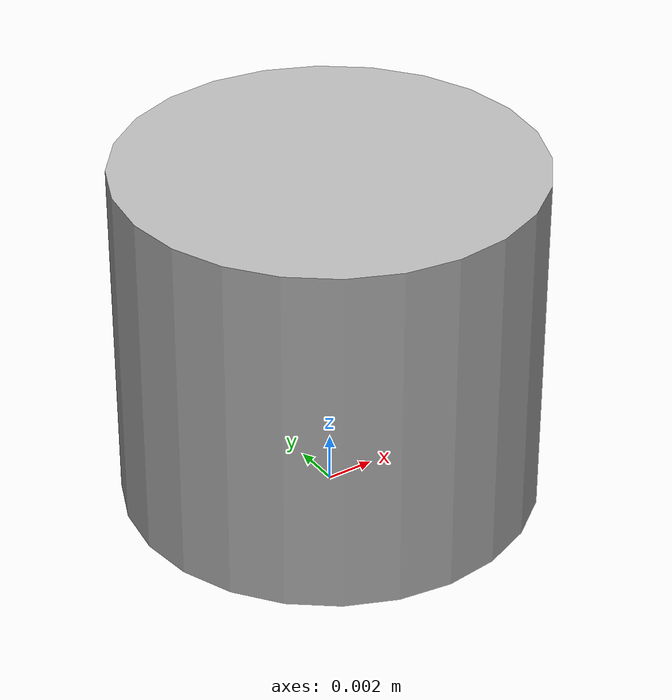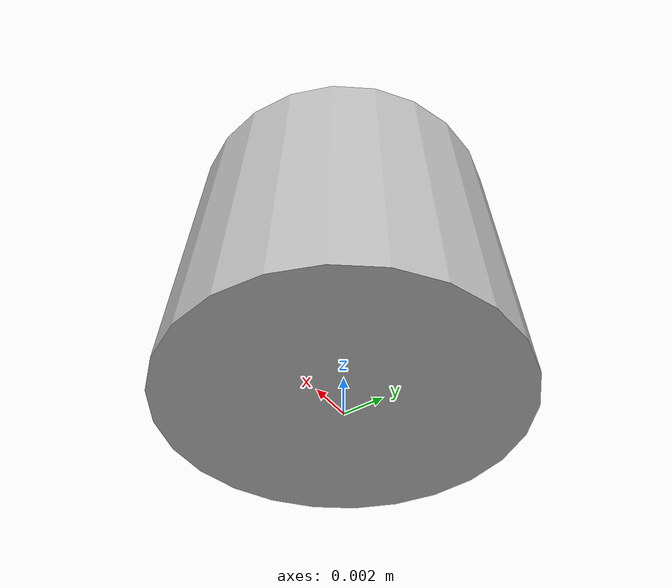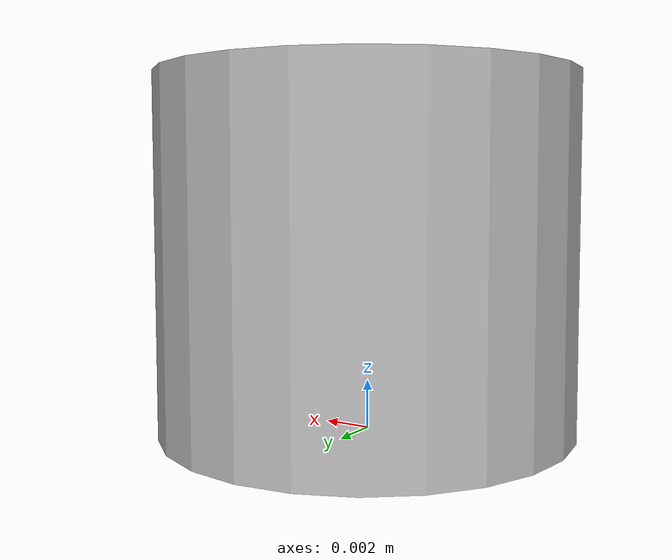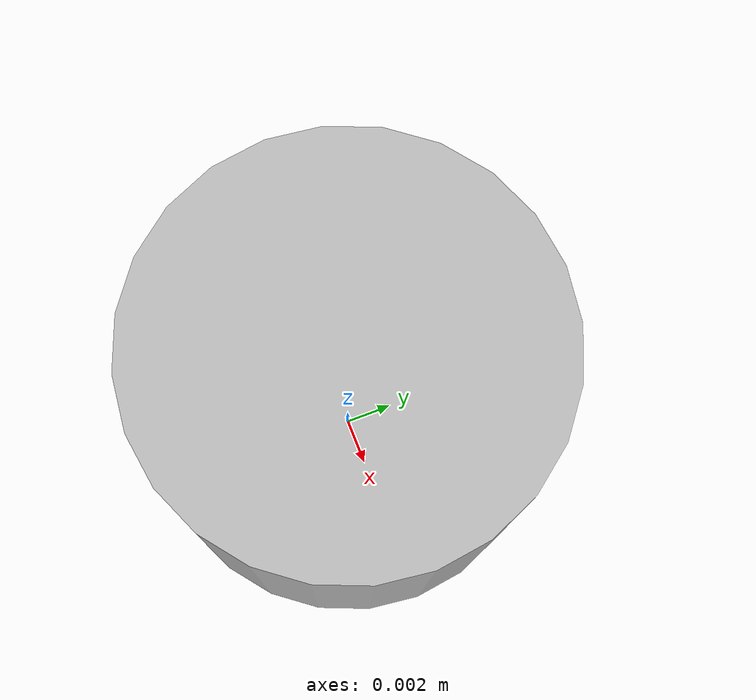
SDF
<?xml version="1.0"?>
<sdf version="1.6">
  <model name="ati_nano17">
    <pose>0 0 0 0 0 0</pose>
    <static>false</static>
    <link name="mount">
      <gravity>false</gravity>
      <inertial>
        <mass>1000.0</mass>
        <inertia>
          <ixx>1.0</ixx><iyy>1.0</iyy><izz>1.0</izz>
          <ixy>0.0</ixy><ixz>0.0</ixz><iyz>0.0</iyz>
        </inertia>
      </inertial>
    </link>
    <link name="body">
      <!-- Lift body so cylinder (length 0.0145) sits flush on ground. -->
      <pose>0 0 0.00725 0 0 0</pose>
      <inertial>
        <mass>0.00907</mass>
        <inertia>
          <ixx>1e-6</ixx><iyy>1e-6</iyy><izz>1e-6</izz>
          <ixy>0.0</ixy><ixz>0.0</ixz><iyz>0.0</iyz>
        </inertia>
      </inertial>
      <collision name="tactile_collision">
        <geometry>
          <cylinder>
            <radius>0.0085</radius>
            <length>0.0145</length>
          </cylinder>
        </geometry>
      </collision>
      <!-- Bounding size for test framework -->
      <sensor_size>0.017 0.017 0.0145</sensor_size>
      <shape>cylinder</shape>
      <visual name="visual">
        <geometry>
          <cylinder>
            <radius>0.0085</radius>
            <length>0.0145</length>
          </cylinder>
        </geometry>
      </visual>
      <sensor name="tactile_bumper" type="contact">
        <always_on>true</always_on>
        <update_rate>50.0</update_rate>
        <contact>
          <collision>tactile_collision</collision>
        </contact>
        <plugin name="tactile_bumper_plugin" filename="libgazebo_ros_bumper.so">
          <robotNamespace>/ati_nano17</robotNamespace>
          <topicName>bumper_states</topicName>
          <frameName>body</frameName>
        </plugin>
      </sensor>
    </link>
    <joint name="ft_joint" type="fixed">
      <parent>mount</parent>
      <child>body</child>
      <sensor name="ft_sensor" type="force_torque">
        <always_on>true</always_on>
        <update_rate>1000</update_rate>
        <visualize>false</visualize>
        <force_torque>
          <frame>child</frame>
          <measure_direction>child_to_parent</measure_direction>
        </force_torque>
      </sensor>
    </joint>
    <joint name="world_anchor" type="fixed">
      <parent>world</parent>
      <child>mount</child>
    </joint>
  </model>
</sdf>
